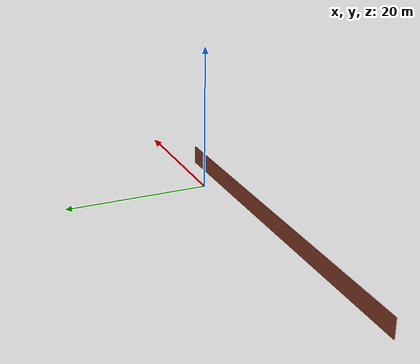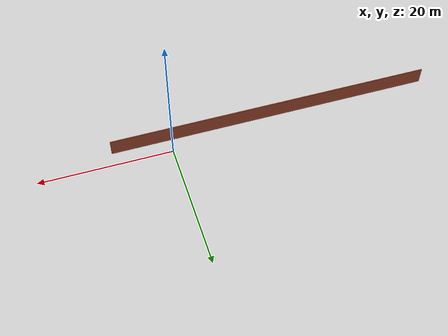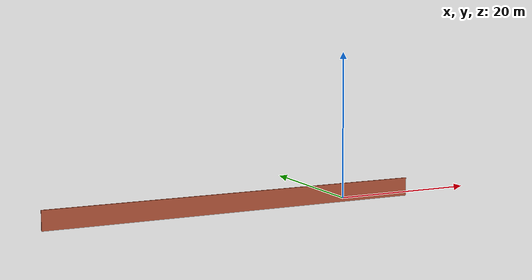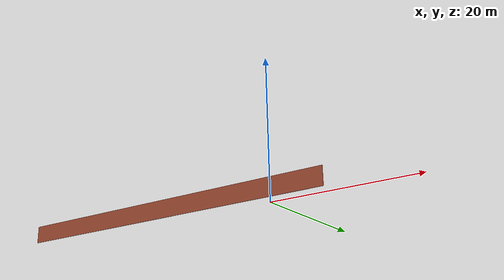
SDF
<?xml version='1.0'?>
<sdf version='1.5'>
  <model name='wall1'>
    <pose frame=''>-16.2699 -2.33953 0 0 -0 0</pose>
    <link name='Wall_0'>
      <collision name='Wall_0_Collision'>
        <geometry>
          <box>
            <size>50 0.15 2.5</size>
          </box>
        </geometry>
        <pose frame=''>0 0 1.25 0 -0 0</pose>
      </collision>
      <visual name='Wall_0_Visual'>
        <pose frame=''>0 0 1.25 0 -0 0</pose>
        <geometry>
          <box>
            <size>50 0.15 2.5</size>
          </box>
        </geometry>
        <material>
          <script>
            <uri>file://media/materials/scripts/gazebo.material</uri>
            <name>Gazebo/Bricks</name>
          </script>
          <ambient>1 1 1 1</ambient>
        </material>
      </visual>
      <pose frame=''>1e-06 0 0 0 -0 3.14159</pose>
    </link>
    <static>1</static>
  </model>
</sdf>
